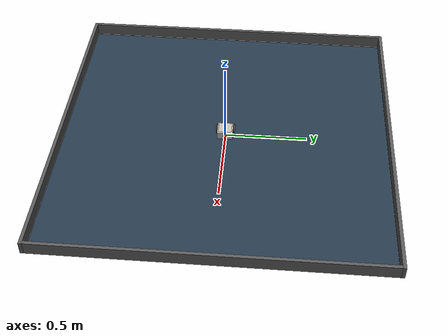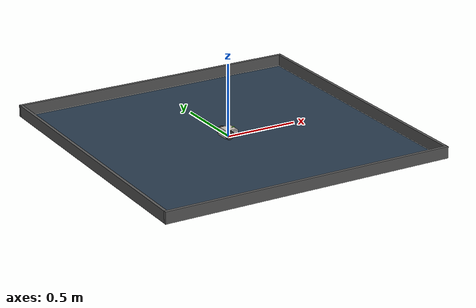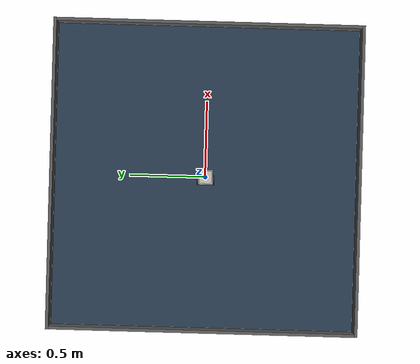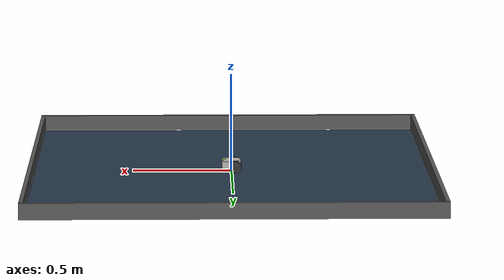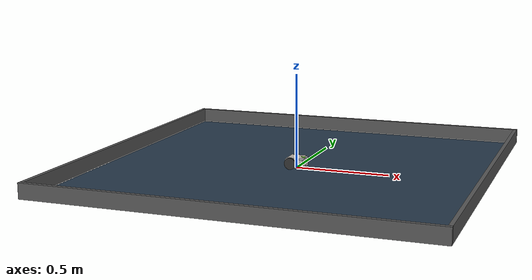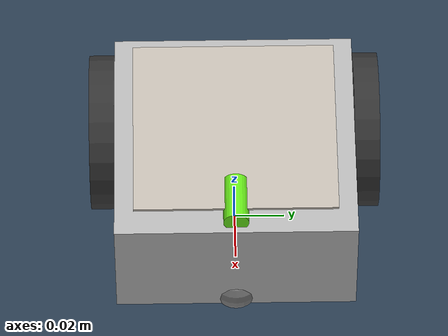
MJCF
<mujoco model="robots12_arena_2cam">
    <compiler angle="degree" coordinate="local"/>

    <option integrator="RK4"
            timestep="0.002"
            gravity="0 0 -9.81"/>

    <asset>
        <!-- Arena Floor Checker Texture -->
        <texture name="arena_floor_tex"
                 type="2d"
                 builtin="checker"
                 rgb1=".2 .3 .4"
                 rgb2=".1 .15 .2"
                 width="512"
                 height="512"
                 mark="cross"
                 markrgb=".8 .8 .8"/>

        <material name="arena_floor_mat"
                  texture="arena_floor_tex"
                  texrepeat="5 5"
                  texuniform="true"/>
        <!-- Clean Matte Arena Floor (Zero Specular Glare, No False-Quad Interference) -->

        <material name="wall_mat" rgba="0.35 0.35 0.35 1"/>

        <!-- ARUCO ASSETS (Valid MJCF Schema, Zero Glare / Reflectance)-->

        <!-- ArUco Marker 0 -->
        <texture name="aruco0_tex" type="2d" file="aruco_0.png"/>
        <material name="aruco0_mat"
                  texture="aruco0_tex"
                  texuniform="false"
                  texrepeat="1 1"
                  specular="0"
                  shininess="0"
                  reflectance="0"/>

        <!-- ArUco Marker 1 -->
        <texture name="aruco1_tex" type="2d" file="aruco_1.png"/>
        <material name="aruco1_mat"
                  texture="aruco1_tex"
                  texuniform="false"
                  texrepeat="1 1"
                  specular="0"
                  shininess="0"
                  reflectance="0"/>
    </asset>

    <visual>
        <!-- Standard 16:9 offscreen buffer -->
        <global offwidth="1920" offheight="1080"/>
        <!-- offsamples="0" disables MSAA blur across high-contrast ArUco bits -->
        <quality shadowsize="2048" offsamples="0"/>
        <map znear="0.01"/>
    </visual>

    <worldbody>
        <!-- Lighting without hard localized glare -->
        <light name="arena_light"
               directional="false"
               diffuse=".85 .85 .85"
               specular=".1 .1 .1"
               pos="0 0 3.0"/>

        <!-- Ground Plane: 2m x 2m working area -->
        <geom name="arena_floor"
              type="plane"
              size="1 1 .25"
              material="arena_floor_mat"
              friction="2.0 0.005 0.0001"/>

        <!-- Boundary Walls (Height = 8cm, Thickness = 2cm) -->
        <geom name="wall_north" type="box" size="1.02 0.01 0.04" pos="0 1.01 0.04" material="wall_mat"/>
        <geom name="wall_south" type="box" size="1.02 0.01 0.04" pos="0 -1.01 0.04" material="wall_mat"/>
        <geom name="wall_east"  type="box" size="0.01 1.00 0.04" pos="1.01 0 0.04" material="wall_mat"/>
        <geom name="wall_west"  type="box" size="0.01 1.00 0.04" pos="-1.01 0 0.04" material="wall_mat"/>

        <!-- Target body placed at origin for automatic camera tracking -->
        <body name="arena_center" pos="0 0 0"/>

        <!-- NORTH & SOUTH SLANTED CAMERAS (720p Native 16:9 Setup)    -->
        <!-- Height is 2.4 m -->
        <camera name="cam_south"
                pos="0 -1.15 2.1"
                mode="targetbody"
                target="arena_center"
                fovy="48"/>

        <camera name="cam_north"
                pos="0 1.15 2.1"
                mode="targetbody"
                target="arena_center"
                fovy="48"/>
    </worldbody>

    <!-- Robot Inclusions -->
    <include file="robot1.xml"/>
    <include file="robot2.xml"/>
</mujoco>

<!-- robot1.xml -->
<mujocoinclude>
    <worldbody>
        <body name="robot1" pos="0 0 0">
            <freejoint name="robot1_root"/>

            <!-- Robot 1 Third-Person Follow Camera -->
            <camera name="robot1_tpp_cam"
                    pos="-0.15 0 0.15"
                    xyaxes="0 -1 0  0.447 0 0.894"
                    fovy="60"/>

            <!-- Main Chassis: 9.5cm x 9.5cm x 4.8cm -->
            <!-- Top surface sits at z = 0.031 + 0.024 = 0.055m -->
            <geom name="robot1_chassis_geom"
                  type="box"
                  size="0.0475 0.0475 0.024"
                  pos="0 0 0.031"
                  rgba="0.7 0.7 0.7 1"/>

            <!-- ARUCO TRACKING PLATE                                  -->
            <!-- 8cm x 8cm plate mounted flush on top of the chassis   -->
            <!-- robot1.xml -->
            <geom name="robot1_aruco_plate"
                  type="box"
                  size="0.04 0.04 0.0005"
                  pos="0 0 0.06"
                  material="aruco0_mat"
                  contype="0"
                  conaffinity="0"/>

            <!-- LEFT WHEEL                                            -->
            <body name="robot1_left_wheel"
                  pos="-0.02 0.0525 0.031">
                <joint name="robot1_left_wheel_joint"
                       type="hinge"
                       axis="0 1 0"
                       damping="0.005"/>
                <geom name="robot1_left_wheel_geom"
                      type="cylinder"
                      size="0.031 0.005"
                      rgba="0.2 0.2 0.2 1"
                      zaxis="0 1 0"
                      friction="2.0 0.005 0.0001"/>
            </body>

            <!-- RIGHT WHEEL                                           -->
            <body name="robot1_right_wheel"
                  pos="-0.02 -0.0525 0.031">
                <joint name="robot1_right_wheel_joint"
                       type="hinge"
                       axis="0 1 0"
                       damping="0.005"/>
                <geom name="robot1_right_wheel_geom"
                      type="cylinder"
                      size="0.031 0.005"
                      rgba="0.2 0.2 0.2 1"
                      zaxis="0 1 0"
                      friction="2.0 0.005 0.0001"/>
            </body>

            <!-- CASTOR WHEEL                                          -->
            <body name="robot1_castor_wheel"
                  pos="0.04 0 0.01">
                <joint name="robot1_castor_joint"
                       type="ball"/>
                <geom name="robot1_castor_geom"
                      type="sphere"
                      size="0.01"
                      rgba="0.5 0.5 0.5 1"
                      friction="0.005 0.005 0.0001"/>
            </body>

            <!-- FRONT DIRECTION ARROW (Visual indicator)              -->
            <body name="robot1_direction_arrow"
                  pos="0.035 0 0.058">
                <geom name="robot1_arrow_geom"
                      type="cylinder"
                      size="0.005 0.01"
                      rgba="0.4 0.9 0.1 1"
                      zaxis="1 0 0"
                      contype="0" conaffinity="0"/>
            </body>
        </body>
    </worldbody>

    <!-- Actuators -->
    <actuator>
        <motor name="robot1_left_motor"  joint="robot1_left_wheel_joint"  gear="1"/>
        <motor name="robot1_right_motor" joint="robot1_right_wheel_joint" gear="1"/>
    </actuator>
</mujocoinclude>

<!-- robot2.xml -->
<mujocoinclude>
    <worldbody>
        <body name="robot2" pos="0 0 0">
            <freejoint name="robot2_root"/>

            <!-- Robot 2 Third-Person Follow Camera -->
            <camera name="robot2_tpp_cam"
                    pos="-0.15 0 0.15"
                    xyaxes="0 -1 0  0.447 0 0.894"
                    fovy="60"/>

            <!-- Robot 2 Chassis: Violet/Purple (9.5cm x 9.5cm x 4.8cm) -->
            <!-- Top surface sits at z = 0.031 + 0.024 = 0.055m -->
            <geom name="robot2_chassis_geom"
                  type="box"
                  size="0.0475 0.0475 0.024"
                  pos="0 0 0.031"
                  rgba="0.75 0.75 0.8 1"/>

            <!-- ARUCO TRACKING PLATE (Marker ID 1)                    -->
            <!-- 8cm x 8cm plate mounted flush on top of the chassis   -->
            <!-- robot2.xml -->
            <geom name="robot2_aruco_plate"
                type="box"
                size="0.04 0.04 0.0005"
                pos="0 0 0.06"
                material="aruco1_mat"
                contype="0"
                conaffinity="0"/>

            <!-- LEFT WHEEL                                            -->
            <body name="robot2_left_wheel" pos="-0.02 0.0525 0.031">
                <joint name="robot2_left_wheel_joint"
                       type="hinge"
                       axis="0 1 0"
                       damping="0.005"/>
                <geom name="robot2_left_wheel_geom"
                      type="cylinder"
                      size="0.031 0.005"
                      rgba="0.2 0.2 0.2 1"
                      zaxis="0 1 0"
                      friction="2.0 0.005 0.0001"/>
            </body>

            <!-- RIGHT WHEEL                                           -->
            <body name="robot2_right_wheel" pos="-0.02 -0.0525 0.031">
                <joint name="robot2_right_wheel_joint"
                       type="hinge"
                       axis="0 1 0"
                       damping="0.005"/>
                <geom name="robot2_right_wheel_geom"
                      type="cylinder"
                      size="0.031 0.005"
                      rgba="0.2 0.2 0.2 1"
                      zaxis="0 1 0"
                      friction="2.0 0.005 0.0001"/>
            </body>

            <!-- CASTOR WHEEL                                          -->
            <body name="robot2_castor_wheel" pos="0.04 0 0.01">
                <joint name="robot2_castor_joint" type="ball"/>
                <geom name="robot2_castor_geom"
                      type="sphere"
                      size="0.01"
                      rgba="0.5 0.5 0.5 1"
                      friction="0.005 0.005 0.0001"/>
            </body>

            <!-- FRONT DIRECTION ARROW (Visual indicator)              -->
            <!-- Positioned low and forward to stay clear of the tag   -->
            <body name="robot2_direction_arrow" pos="0.035 0 0.058">
                <geom name="robot2_arrow_geom"
                      type="cylinder"
                      size="0.005 0.01"
                      rgba="0.8 1.0 0.1 1"
                      zaxis="1 0 0"
                      contype="0" conaffinity="0"/>
            </body>
        </body>
    </worldbody>

    <!-- Actuators -->
    <actuator>
        <motor name="robot2_left_motor"
               joint="robot2_left_wheel_joint"
               gear="1"/>
        <motor name="robot2_right_motor"
               joint="robot2_right_wheel_joint"
               gear="1"/>
    </actuator>
</mujocoinclude>
